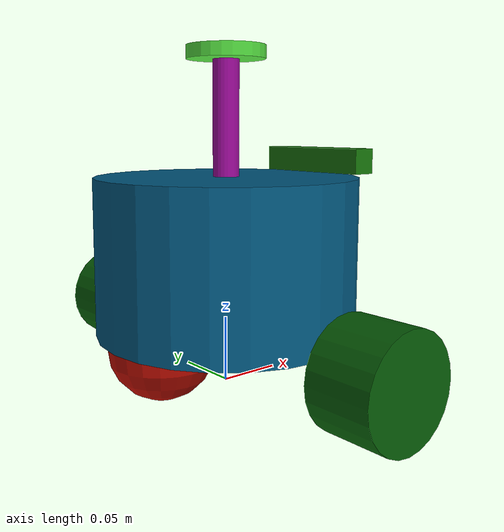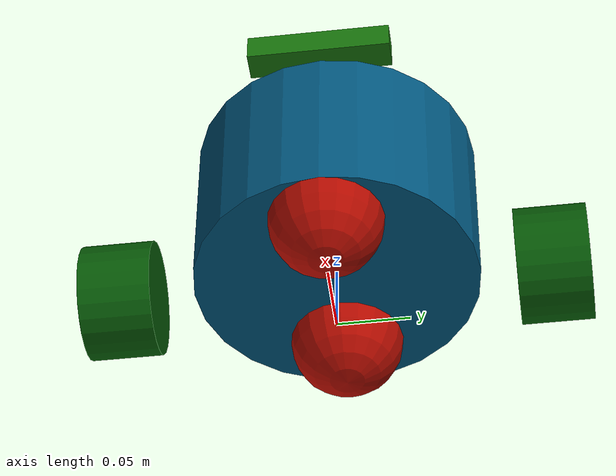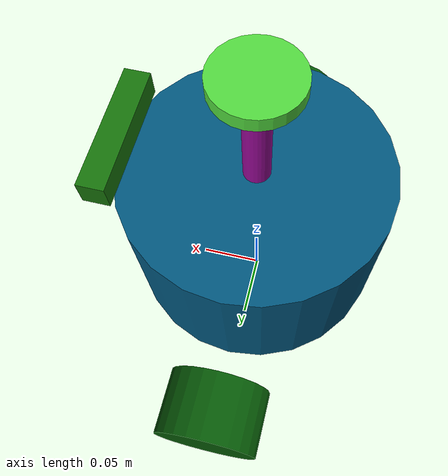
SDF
<sdf version="1.6">
    <model name="my_diff_car" canonical_link='base_footprint'>
        <static>false</static>
        <link name="base_footprint"></link>
        <link name="base_link">
            <pose relative_to='base_footprint'>0 0 0.1 0 0 0</pose>
            <visual name='base_link visual'>
                <pose>0 0 0 0 0 0</pose>
                <geometry>
                    <cylinder>
                        <radius>0.1</radius>
                        <length>0.12</length>
                    </cylinder>
                </geometry>
                <material>
                    <ambient>0.004391442035325718 0.34191442489801843 0.4969329950515914 1</ambient>
                    <diffuse>0.004391442035325718 0.34191442489801843 0.4969329950515914 1</diffuse>
                    <specular>0.1 0.1 0.1 1</specular>
                    <emissive>0 0 0 1</emissive>
                </material>
            </visual>
            <collision name='base_link collision'>
                <pose>0 0 0 0 0 0</pose>
                <geometry>
                    <cylinder>
                        <radius>0.1</radius>
                        <length>0.12</length>
                    </cylinder>
                </geometry>
            </collision>
            <inertial>
                <mass>200</mass>
                <inertia>
                    <ixx>66.66666666666666</ixx>
                    <ixy>0</ixy>
                    <ixz>0</ixz>
                    <iyy>100</iyy>
                    <iyz>0</iyz>
                    <izz>66.66666666666666</izz>
                </inertia>
            </inertial>
        </link>
        <joint name="base_footprint_to_base_link" type="fixed">
            <pose relative_to='base_link'>0 0 0 0 0 0 </pose>
            <parent>base_footprint</parent>
            <child>base_link</child>
        </joint>
        <link name="imu">
            <pose relative_to='base_link'>0 0 0 0 0 0</pose>
            <visual name='imu visual'>
                <pose>0 0 0 0 0 0</pose>
                <geometry>
                    <box>
                        <size>0.1 0.1 0.1</size>
                    </box>
                </geometry>
                <material>
                    <ambient>0.7454042095350284 0.010960094003125918 0.01764195448412081 1</ambient>
                    <diffuse>0.7454042095350284 0.010960094003125918 0.01764195448412081 1</diffuse>
                    <specular>0.1 0.1 0.1 1</specular>
                    <emissive>0 0 0 1</emissive>
                </material>
            </visual>
            <collision name='imu collision'>
                <pose>0 0 0 0 0 0</pose>
                <geometry>
                    <box>
                        <size>0.1 0.1 0.1</size>
                    </box>
                </geometry>
            </collision>
            <inertial>
                <mass>1</mass>
                <inertia>
                    <ixx>0.16666666666666666</ixx>imu
                    <ixy>0</ixy>
                    <ixz>0</ixz>
                    <iyy>0.16666666666666666</iyy>
                    <iyz>0</iyz>
                    <izz>0.16666666666666666</izz>
                </inertia>
            </inertial>

            <sensor name="imu" type="imu">
                <always_on>true</always_on>
                <update_rate>100</update_rate>
                <topic>imu</topic>
                <imu>
                    <angular_velocity>
                        <x>
                            <noise type="gaussian">
                                <mean>0</mean>
                                <stddev>0</stddev>
                            </noise>
                        </x>
                        <y>
                            <noise type="gaussian">
                                <mean>0</mean>
                                <stddev>0</stddev>
                            </noise>
                        </y>
                        <z>
                            <noise type="gaussian">
                                <mean>0</mean>
                                <stddev>0</stddev>
                            </noise>
                        </z>
                    </angular_velocity>
                    <linear_acceleration>
                        <x>
                            <noise type="gaussian">
                                <mean>0</mean>
                                <stddev>0</stddev>
                            </noise>
                        </x>
                        <y>
                            <noise type="gaussian">
                                <mean>0</mean>
                                <stddev>0</stddev>
                            </noise>
                        </y>
                        <z>
                            <noise type="gaussian">
                                <mean>0</mean>
                                <stddev>0</stddev>
                            </noise>
                        </z>
                    </linear_acceleration>
                </imu>
            </sensor>
        </link>
        <joint name="base_link_to_imu" type="fixed">
            <pose relative_to='imu'>0 0 0 0 0 0 </pose>
            <parent>base_link</parent>
            <child>imu</child>
        </joint>
        <link name="camera">
            <pose relative_to='imu'>0.1 0 0.07 0 0 0</pose>
            <visual name='camera visual'>
                <pose>0 0 0 0 0 0</pose>
                <geometry>
                    <box>
                        <size>0.02 0.1 0.02</size>
                    </box>
                </geometry>
                <material>
                    <ambient>0.09084171117479915 0.45641102317066595 0.04518620437910499 1</ambient>
                    <diffuse>0.09084171117479915 0.45641102317066595 0.04518620437910499 1</diffuse>
                    <specular>0.1 0.1 0.1 1</specular>
                    <emissive>0 0 0 1</emissive>
                </material>
            </visual>
            <collision name='camera collision'>
                <pose>0 0 0 0 0 0</pose>
                <geometry>
                    <box>
                        <size>0.02 0.1 0.02</size>
                    </box>
                </geometry>
            </collision>
            <inertial>
                <mass>1</mass>
                <inertia>
                    <ixx>0.16666666666666666</ixx>
                    <ixy>0</ixy>
                    <ixz>0</ixz>
                    <iyy>0.16666666666666666</iyy>
                    <iyz>0</iyz>
                    <izz>0.16666666666666666</izz>
                </inertia>
            </inertial>

            <sensor name="camera_camera" type="rgbd_camera">
                <always_on>true</always_on>
                <visualize>true</visualize>
                <update_rate>100</update_rate>
                <topic>camera</topic>
                <gz_frame_id>camera</gz_frame_id>
                <camera name="camera_camera">
                    <camera_info_topic>camera/camera_info</camera_info_topic>
                    <horizontal_fov>1.3962634</horizontal_fov>
                    <image>
                        <width>800</width>
                        <height>600</height>
                        <format>R8G8B8</format>
                    </image>
                    <clip>
                        <near>0.1</near>
                        <far>100</far>
                    </clip>
                    <noise>
                        <type>gaussian</type>
                        <mean>0</mean>
                        <stddev>0.007</stddev>
                    </noise>
                </camera>
            </sensor>
        </link>
        <joint name="base_to_camera" type="fixed">
            <pose relative_to='camera'>0 0 0 0 0 0 </pose>
            <parent>base_link</parent>
            <child>camera</child>
        </joint>
        <link name="lidar_support">
            <pose relative_to='base_link'>0 0 0.1 0 0 0</pose>
            <visual name='lidar_support visual'>
                <pose>0 0 0 0 0 0</pose>
                <geometry>
                    <cylinder>
                        <radius>0.01</radius>
                        <length>0.1</length>
                    </cylinder>
                </geometry>
                <material>
                    <ambient>0.6038273388475408 0.036889450395083165 0.5972017883558645 1</ambient>
                    <diffuse>0.6038273388475408 0.036889450395083165 0.5972017883558645 1</diffuse>
                    <specular>0.1 0.1 0.1 1</specular>
                    <emissive>0 0 0 1</emissive>
                </material>
            </visual>
            <collision name='lidar_support collision'>
                <pose>0 0 0 0 0 0</pose>
                <geometry>
                    <cylinder>
                        <radius>0.01</radius>
                        <length>0.1</length>
                    </cylinder>
                </geometry>
            </collision>
            <inertial>
                <mass>1</mass>
                <inertia>
                    <ixx>0.3333333333333333</ixx>
                    <ixy>0</ixy>
                    <ixz>0</ixz>
                    <iyy>0.5</iyy>
                    <iyz>0</iyz>
                    <izz>0.3333333333333333</izz>
                </inertia>
            </inertial>
        </link>
        <joint name="base_link_to_lidar_support" type="fixed">
            <pose relative_to='lidar_support'>0 0 0 0 0 0 </pose>
            <parent>base_link</parent>
            <child>lidar_support</child>
        </joint>
        <link name="lidar">
            <pose relative_to='lidar_support'>0 0 0.05199988046616394 0 0 0</pose>
            <visual name='lidar visual'>
                <pose>0 0 0 0 0 0</pose>
                <geometry>
                    <cylinder>
                        <radius>0.03</radius>
                        <length>0.01</length>
                    </cylinder>
                </geometry>
                <material>
                    <ambient>0.3231432091022285 0.85499260812105 0.24620132669705552 1</ambient>
                    <diffuse>0.3231432091022285 0.85499260812105 0.24620132669705552 1</diffuse>
                    <specular>0.1 0.1 0.1 1</specular>
                    <emissive>0 0 0 1</emissive>
                </material>
            </visual>
            <collision name='lidar collision'>
                <pose>0 0 0 0 0 0</pose>
                <geometry>
                    <cylinder>
                        <radius>0.03</radius>
                        <length>0.01</length>
                    </cylinder>
                </geometry>
            </collision>
            <inertial>
                <mass>1</mass>
                <inertia>
                    <ixx>0.3333333333333333</ixx>
                    <ixy>0</ixy>
                    <ixz>0</ixz>
                    <iyy>0.5</iyy>
                    <iyz>0</iyz>
                    <izz>0.3333333333333333</izz>
                </inertia>
            </inertial>

            <sensor name="lidar_lidar" type="gpu_lidar">
                <always_on>true</always_on>
                <visualize>true</visualize>
                <pose>-0.064 0 0.121 0 0 0</pose>
                <update_rate>5</update_rate>
                <topic>scan</topic>
                <gz_frame_id>lidar</gz_frame_id>
                <lidar>
                    <scan>
                        <horizontal>
                            <samples>360</samples>
                            <resolution>1</resolution>
                            <min_angle>0</min_angle>
                            <max_angle>6.28</max_angle>
                        </horizontal>
                    </scan>
                    <range>
                        <min>0.12</min>
                        <max>3.5</max>
                        <resolution>0.015</resolution>
                    </range>
                    <noise>
                        <type>gaussian</type>
                        <mean>0</mean>
                        <stddev>0.01</stddev>
                    </noise>
                </lidar>
            </sensor>
        </link>
        <joint name="lidar_support_to_lidar" type="fixed">
            <pose relative_to='lidar'>0 0 0 0 0 0 </pose>
            <parent>lidar_support</parent>
            <child>lidar</child>
        </joint>
        <link name="left_wheel">
            <pose relative_to='base_link'>0 0.15 -0.06 -1.5707963267948963 0 0</pose>
            <visual name='left_wheel visual'>
                <pose>0 0 0 0 0 0</pose>
                <geometry>
                    <cylinder>
                        <radius>0.04</radius>
                        <length>0.05</length>
                    </cylinder>
                </geometry>
                <material>
                    <ambient>0.023153366173251363 0.3515325994898463 0.026241221889696346 1</ambient>
                    <diffuse>0.023153366173251363 0.3515325994898463 0.026241221889696346 1</diffuse>
                    <specular>0.1 0.1 0.1 1</specular>
                    <emissive>0 0 0 1</emissive>
                </material>
            </visual>
            <collision name='left_wheel collision'>
                <pose>0 0 0 0 0 0</pose>
                <geometry>
                    <cylinder>
                        <radius>0.04</radius>
                        <length>0.05</length>
                    </cylinder>
                </geometry>
                <surface>
                    <friction>
                        <ode>
                            <mu>20.0</mu>
                            <mu2>20.0</mu2>
                            <kp>1000000000.0</kp>
                            <kd>1.0</kd>
                            <fdir1>0 0 0</fdir1>
                            <slip1>0.0</slip1>
                            <slip2>0.0</slip2>
                        </ode>
                    </friction>
                </surface>
            </collision>
            <inertial>
                <mass>1</mass>
                <inertia>
                    <ixx>0.3333333333333333</ixx>
                    <ixy>0</ixy>
                    <ixz>0</ixz>
                    <iyy>0.5</iyy>
                    <iyz>0</iyz>
                    <izz>0.3333333333333333</izz>
                </inertia>
            </inertial>
        </link>
        <joint name="base_link_to_left_wheel" type="revolute">
            <pose relative_to='left_wheel'>0 0 0 0 0 0 </pose>
            <parent>base_link</parent>
            <child>left_wheel</child>
            <axis>
                <xyz expressed_in='left_wheel'>0 0 1</xyz>
            </axis>
        </joint>
        <link name="right_wheel">
            <pose relative_to='base_link'>0 -0.15 -0.06 -1.5707963267948963 0 0</pose>
            <visual name='right_wheel visual'>
                <pose>0 0 0 0 0 0</pose>
                <geometry>
                    <cylinder>
                        <radius>0.04</radius>
                        <length>0.05</length>
                    </cylinder>
                </geometry>
                <material>
                    <ambient>0.023153366173251363 0.3515325994898463 0.026241221889696346 1</ambient>
                    <diffuse>0.023153366173251363 0.3515325994898463 0.026241221889696346 1</diffuse>
                    <specular>0.1 0.1 0.1 1</specular>
                    <emissive>0 0 0 1</emissive>
                </material>
            </visual>
            <collision name='right_wheel collision'>
                <pose>0 0 0 0 0 0</pose>
                <geometry>
                    <cylinder>
                        <radius>0.04</radius>
                        <length>0.05</length>
                    </cylinder>
                </geometry>
                <surface>
                    <friction>
                        <ode>
                            <mu>20.0</mu>
                            <mu2>20.0</mu2>
                            <kp>1000000000.0</kp>
                            <kd>1.0</kd>
                            <fdir1>0 0 0</fdir1>
                            <slip1>0.0</slip1>
                            <slip2>0.0</slip2>
                        </ode>
                    </friction>
                </surface>
            </collision>
            <inertial>
                <mass>1</mass>
                <inertia>
                    <ixx>0.3333333333333333</ixx>
                    <ixy>0</ixy>
                    <ixz>0</ixz>
                    <iyy>0.5</iyy>
                    <iyz>0</iyz>
                    <izz>0.3333333333333333</izz>
                </inertia>
            </inertial>
        </link>
        <joint name="base_link_to_right_wheel" type="revolute">
            <pose relative_to='right_wheel'>0 0 0 0 0 0 </pose>
            <parent>base_link</parent>
            <child>right_wheel</child>
            <axis>
                <xyz expressed_in='right_wheel'>0 0 1</xyz>
            </axis>
        </joint>
        <link name="front_chaster">
            <pose relative_to='base_link'>0.06 0 -0.06 0 0 0</pose>
            <visual name='front_chaster visual'>
                <pose>0 0 0 0 0 0</pose>
                <geometry>
                    <sphere>
                        <radius>0.04</radius>
                    </sphere>
                </geometry>
                <material>
                    <ambient>0.7083757798856457 0.04373502925049377 0.00030352698352941176 1</ambient>
                    <diffuse>0.7083757798856457 0.04373502925049377 0.00030352698352941176 1</diffuse>
                    <specular>0.1 0.1 0.1 1</specular>
                    <emissive>0 0 0 1</emissive>
                </material>
            </visual>
            <collision name='front_chaster collision'>
                <pose>0 0 0 0 0 0</pose>
                <geometry>
                    <sphere>
                        <radius>0.04</radius>
                    </sphere>
                </geometry>
                <surface>
                    <friction>
                        <ode>
                            <mu>00</mu>
                            <mu2>0.0</mu2>
                            <kp>1000000000.0</kp>
                            <kd>1.0</kd>
                            <fdir1>0 0 0</fdir1>
                            <slip1>0.0</slip1>
                            <slip2>0.0</slip2>
                        </ode>
                    </friction>
                </surface>
            </collision>
            <inertial>
                <mass>1</mass>
                <inertia>
                    <ixx>0.4</ixx>
                    <ixy>0</ixy>
                    <ixz>0</ixz>
                    <iyy>0.4</iyy>
                    <iyz>0</iyz>
                    <izz>0.4</izz>
                </inertia>
            </inertial>
        </link>
        <joint name="base_link_to_front_chaster" type="fixed">
            <pose relative_to='front_chaster'>0 0 0 0 0 0 </pose>
            <parent>base_link</parent>
            <child>front_chaster</child>
        </joint>
        <link name="back_chaster">
            <pose relative_to='base_link'>-0.06 0 -0.06 0 0 0</pose>
            <visual name='back_chaster visual'>
                <pose>0 0 0 0 0 0</pose>
                <geometry>
                    <sphere>
                        <radius>0.04</radius>
                    </sphere>
                </geometry>
                <material>
                    <ambient>0.7083757798856457 0.04373502925049377 0.00030352698352941176 1</ambient>
                    <diffuse>0.7083757798856457 0.04373502925049377 0.00030352698352941176 1</diffuse>
                    <specular>0.1 0.1 0.1 1</specular>
                    <emissive>0 0 0 1</emissive>
                </material>
            </visual>
            <collision name='back_chaster collision'>
                <pose>0 0 0 0 0 0</pose>
                <geometry>
                    <sphere>
                        <radius>0.04</radius>
                    </sphere>
                </geometry>
                <surface>
                    <friction>
                        <ode>
                            <mu>00</mu>
                            <mu2>0.0</mu2>
                            <kp>1000000000.0</kp>
                            <kd>1.0</kd>
                            <fdir1>0 0 0</fdir1>
                            <slip1>0.0</slip1>
                            <slip2>0.0</slip2>
                        </ode>
                    </friction>
                </surface>
            </collision>
            <inertial>
                <mass>1</mass>
                <inertia>
                    <ixx>0.4</ixx>
                    <ixy>0</ixy>
                    <ixz>0</ixz>
                    <iyy>0.4</iyy>
                    <iyz>0</iyz>
                    <izz>0.4</izz>
                </inertia>
            </inertial>
        </link>
        <joint name="base_link_to_back_chaster" type="fixed">
            <pose relative_to='back_chaster'>0 0 0 0 0 0 </pose>
            <parent>base_link</parent>
            <child>back_chaster</child>
        </joint>
        <!-- Joint state publisher -->
        <plugin name="gz::sim::systems::JointStatePublisher" filename="gz-sim-joint-state-publisher-system">
            <topic>joint_states</topic>
            <joint_name>base_link_to_right_wheel</joint_name>
            <joint_name>base_link_to_left_wheel</joint_name>
        </plugin>

        <!-- Differential drive -->
        <plugin filename="gz-sim-diff-drive-system" name="gz::sim::systems::DiffDrive">
            <left_joint>base_link_to_left_wheel</left_joint>
            <right_joint>base_link_to_right_wheel</right_joint>
            <wheel_separation>0.3</wheel_separation>
            <wheel_radius>0.04</wheel_radius>
            <max_linear_acceleration>0.033</max_linear_acceleration>
            <odom_topic>odom</odom_topic>
            <topic>cmd_vel</topic>
            <frame_id>odom</frame_id>
            <child_frame_id>base_footprint</child_frame_id>
            <odom_publisher_frequency>30</odom_publisher_frequency>
            <tf_topic>/tf</tf_topic>
        </plugin>
    </model>
</sdf>
